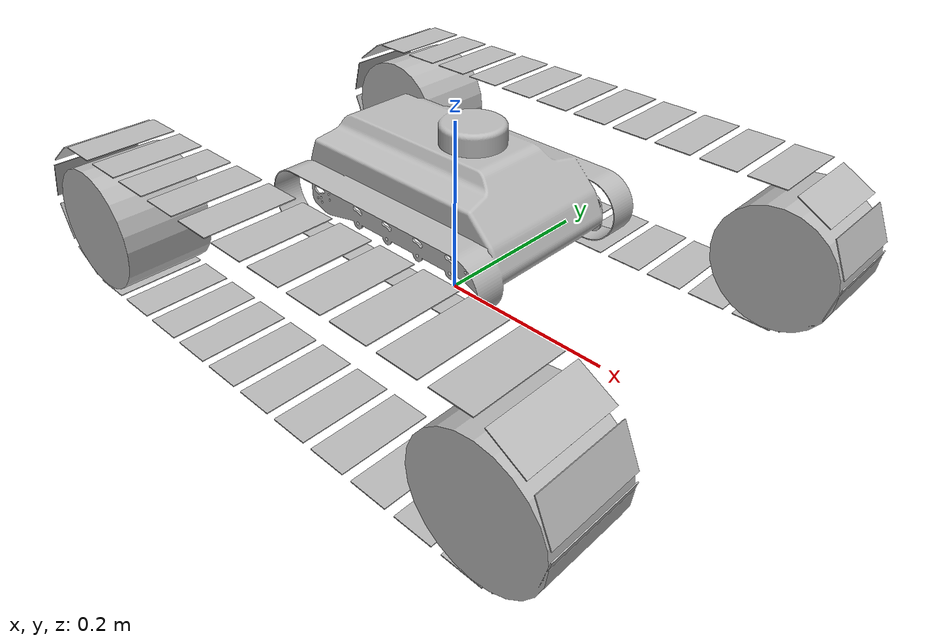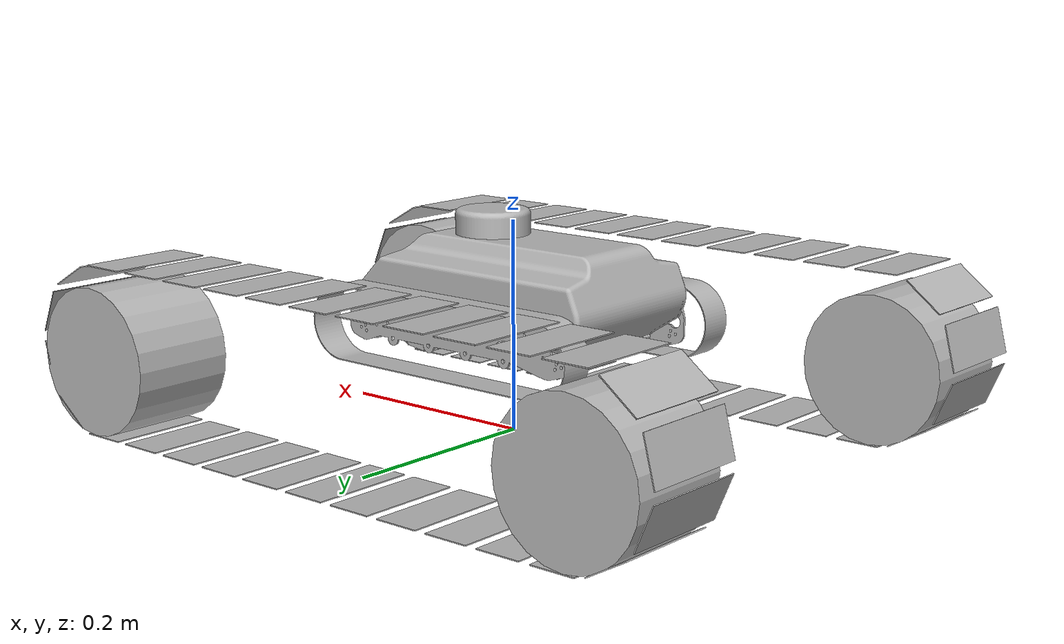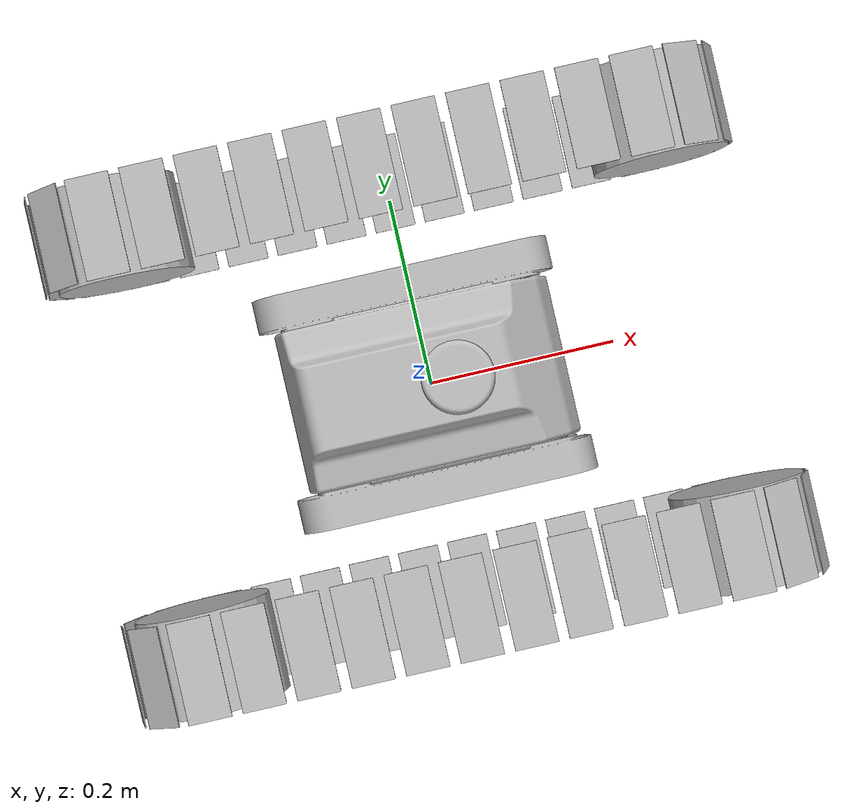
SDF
<?xml version='1.0'?>
<sdf version="1.4">
  <model name="track_creator">
    <link name="base_link">
      <self_collide>0</self_collide>
      <pose>0 0 0.14 0 0 0</pose>
      <collision name="base_link_collision">
        <geometry>
          <box>
            <size>0.56 0.34 0.14</size>
          </box>
        </geometry>
      </collision>
      <visual name="base_link_visual">
        <geometry>
          <mesh><uri>model://tank/tank.stl</uri><scale>0.001 0.001 0.001</scale></mesh>
        </geometry>
      </visual>
    </link>
    <link name="drum1">
      <self_collide>1</self_collide>
      <pose>0.28 0.22 0.071 1.57079632679 0 0</pose>
      <collision name="drum1_collision">
        <geometry>
          <cylinder>
            <radius>0.07</radius>
            <length>0.1</length>
          </cylinder>
        </geometry>
      </collision>
      <visual name="drum1_visual">
        <geometry>
          <cylinder>
            <radius>0.07</radius>
            <length>0.1</length>
          </cylinder>
        </geometry>
      </visual>
    </link>
    <joint type="revolute" name="drum_joint1">
      <pose>0 0 0 0 0 0</pose>
      <parent>base_link</parent>
      <child>drum1</child>
      <axis>
        <xyz>0 1 0</xyz>
      </axis>
    </joint>
    <link name="drum2">
      <self_collide>1</self_collide>
      <pose>0.28 -0.22 0.071 1.57079632679 0 0</pose>
      <collision name="drum2_collision">
        <geometry>
          <cylinder>
            <radius>0.07</radius>
            <length>0.1</length>
          </cylinder>
        </geometry>
      </collision>
      <visual name="drum2_visual">
        <geometry>
          <cylinder>
            <radius>0.07</radius>
            <length>0.1</length>
          </cylinder>
        </geometry>
      </visual>
    </link>
    <joint type="revolute" name="drum_joint2">
      <pose>0 0 0 0 0 0</pose>
      <parent>base_link</parent>
      <child>drum2</child>
      <axis>
        <xyz>0 1 0</xyz>
      </axis>
    </joint>
    <link name="drum3">
      <self_collide>1</self_collide>
      <pose>-0.28 0.22 0.071 1.57079632679 0 0</pose>
      <collision name="drum3_collision">
        <geometry>
          <cylinder>
            <radius>0.07</radius>
            <length>0.1</length>
          </cylinder>
        </geometry>
      </collision>
      <visual name="drum3_visual">
        <geometry>
          <cylinder>
            <radius>0.07</radius>
            <length>0.1</length>
          </cylinder>
        </geometry>
      </visual>
    </link>
    <joint type="revolute" name="drum_joint3">
      <pose>0 0 0 0 0 0</pose>
      <parent>base_link</parent>
      <child>drum3</child>
      <axis>
        <xyz>0 1 0</xyz>
      </axis>
    </joint>
    <link name="drum4">
      <self_collide>1</self_collide>
      <pose>-0.28 -0.22 0.071 1.57079632679 0 0</pose>
      <collision name="drum4_collision">
        <geometry>
          <cylinder>
            <radius>0.07</radius>
            <length>0.1</length>
          </cylinder>
        </geometry>
      </collision>
      <visual name="drum4_visual">
        <geometry>
          <cylinder>
            <radius>0.07</radius>
            <length>0.1</length>
          </cylinder>
        </geometry>
      </visual>
    </link>
    <joint type="revolute" name="drum_joint4">
      <pose>0 0 0 0 0 0</pose>
      <parent>base_link</parent>
      <child>drum4</child>
      <axis>
        <xyz>0 1 0</xyz>
      </axis>
    </joint>
    <link name="right_pad1">
      <self_collide>1</self_collide>
      <pose>0.0539 0.22 0.0005 0 0.0 0</pose>
      <collision name="right_pad1_collision">
        <geometry>
          <box>
            <size>0.0431 0.1 0.001</size>
          </box>
        </geometry>
      </collision>
      <visual name="right_pad1_visual">
        <geometry>
          <box>
            <size>0.0431 0.1 0.001</size>
          </box>
        </geometry>
      </visual>
    </link>
    <joint type="revolute" name="right_pad_joint1">
      <pose>-0.02695 0 0 0 0 0</pose>
      <parent>right_pad1</parent>
      <child>right_pad2</child>
      <axis>
        <xyz>0 1 0</xyz>
      </axis>
    </joint>
    <link name="right_pad2">
      <self_collide>1</self_collide>
      <pose>0.1078 0.22 0.0005 0 0.0 0</pose>
      <collision name="right_pad2_collision">
        <geometry>
          <box>
            <size>0.0431 0.1 0.001</size>
          </box>
        </geometry>
      </collision>
      <visual name="right_pad2_visual">
        <geometry>
          <box>
            <size>0.0431 0.1 0.001</size>
          </box>
        </geometry>
      </visual>
    </link>
    <joint type="revolute" name="right_pad_joint2">
      <pose>-0.02695 0 0 0 0 0</pose>
      <parent>right_pad2</parent>
      <child>right_pad3</child>
      <axis>
        <xyz>0 1 0</xyz>
      </axis>
    </joint>
    <link name="right_pad3">
      <self_collide>1</self_collide>
      <pose>0.1617 0.22 0.0005 0 0.0 0</pose>
      <collision name="right_pad3_collision">
        <geometry>
          <box>
            <size>0.0431 0.1 0.001</size>
          </box>
        </geometry>
      </collision>
      <visual name="right_pad3_visual">
        <geometry>
          <box>
            <size>0.0431 0.1 0.001</size>
          </box>
        </geometry>
      </visual>
    </link>
    <joint type="revolute" name="right_pad_joint3">
      <pose>-0.02695 0 0 0 0 0</pose>
      <parent>right_pad3</parent>
      <child>right_pad4</child>
      <axis>
        <xyz>0 1 0</xyz>
      </axis>
    </joint>
    <link name="right_pad4">
      <self_collide>1</self_collide>
      <pose>0.2156 0.22 0.0005 0 0.0 0</pose>
      <collision name="right_pad4_collision">
        <geometry>
          <box>
            <size>0.0431 0.1 0.001</size>
          </box>
        </geometry>
      </collision>
      <visual name="right_pad4_visual">
        <geometry>
          <box>
            <size>0.0431 0.1 0.001</size>
          </box>
        </geometry>
      </visual>
    </link>
    <joint type="revolute" name="right_pad_joint4">
      <pose>-0.02695 0 0 0 0 0</pose>
      <parent>right_pad4</parent>
      <child>right_pad5</child>
      <axis>
        <xyz>0 1 0</xyz>
      </axis>
    </joint>
    <link name="right_pad5">
      <self_collide>1</self_collide>
      <pose>0.2695 0.22 0.0005 0 0.0 0</pose>
      <collision name="right_pad5_collision">
        <geometry>
          <box>
            <size>0.0431 0.1 0.001</size>
          </box>
        </geometry>
      </collision>
      <visual name="right_pad5_visual">
        <geometry>
          <box>
            <size>0.0431 0.1 0.001</size>
          </box>
        </geometry>
      </visual>
    </link>
    <joint type="revolute" name="right_pad_joint5">
      <pose>-0.02695 0 0 0 0 0</pose>
      <parent>right_pad5</parent>
      <child>right_pad6</child>
      <axis>
        <xyz>0 1 0</xyz>
      </axis>
    </joint>
    <link name="right_pad6">
      <self_collide>1</self_collide>
      <pose>0.317803275993 0.22 0.0169420225146 0 -0.656178717991 0</pose>
      <collision name="right_pad6_collision">
        <geometry>
          <box>
            <size>0.0431 0.1 0.001</size>
          </box>
        </geometry>
      </collision>
      <visual name="right_pad6_visual">
        <geometry>
          <box>
            <size>0.0431 0.1 0.001</size>
          </box>
        </geometry>
      </visual>
    </link>
    <joint type="revolute" name="right_pad_joint6">
      <pose>-0.02695 0 0 0 0 0</pose>
      <parent>right_pad6</parent>
      <child>right_pad7</child>
      <axis>
        <xyz>0 1 0</xyz>
      </axis>
    </joint>
    <link name="right_pad7">
      <self_collide>1</self_collide>
      <pose>0.346044206578 0.22 0.0594390390652 0 -1.31235743598 0</pose>
      <collision name="right_pad7_collision">
        <geometry>
          <box>
            <size>0.0431 0.1 0.001</size>
          </box>
        </geometry>
      </collision>
      <visual name="right_pad7_visual">
        <geometry>
          <box>
            <size>0.0431 0.1 0.001</size>
          </box>
        </geometry>
      </visual>
    </link>
    <joint type="revolute" name="right_pad_joint7">
      <pose>-0.02695 0 0 0 0 0</pose>
      <parent>right_pad7</parent>
      <child>right_pad8</child>
      <axis>
        <xyz>0 1 0</xyz>
      </axis>
    </joint>
    <link name="right_pad8">
      <self_collide>1</self_collide>
      <pose>0.342493166955 0.22 0.110340283584 0 -1.96853615397 0</pose>
      <collision name="right_pad8_collision">
        <geometry>
          <box>
            <size>0.0431 0.1 0.001</size>
          </box>
        </geometry>
      </collision>
      <visual name="right_pad8_visual">
        <geometry>
          <box>
            <size>0.0431 0.1 0.001</size>
          </box>
        </geometry>
      </visual>
    </link>
    <joint type="revolute" name="right_pad_joint8">
      <pose>-0.02695 0 0 0 0 0</pose>
      <parent>right_pad8</parent>
      <child>right_pad9</child>
      <axis>
        <xyz>0 1 0</xyz>
      </axis>
    </joint>
    <link name="right_pad9">
      <self_collide>1</self_collide>
      <pose>0.308625050534 0.22 0.148504367042 0 -2.62471487197 0</pose>
      <collision name="right_pad9_collision">
        <geometry>
          <box>
            <size>0.0431 0.1 0.001</size>
          </box>
        </geometry>
      </collision>
      <visual name="right_pad9_visual">
        <geometry>
          <box>
            <size>0.0431 0.1 0.001</size>
          </box>
        </geometry>
      </visual>
    </link>
    <joint type="revolute" name="right_pad_joint9">
      <pose>-0.02695 0 0 0 0 0</pose>
      <parent>right_pad9</parent>
      <child>right_pad10</child>
      <axis>
        <xyz>0 1 0</xyz>
      </axis>
    </joint>
    <link name="right_pad10">
      <self_collide>1</self_collide>
      <pose>0.258245628329 0.22 0.161822200016 0 3.14159265359 0</pose>
      <collision name="right_pad10_collision">
        <geometry>
          <box>
            <size>0.0431 0.1 0.001</size>
          </box>
        </geometry>
      </collision>
      <visual name="right_pad10_visual">
        <geometry>
          <box>
            <size>0.0431 0.1 0.001</size>
          </box>
        </geometry>
      </visual>
    </link>
    <joint type="revolute" name="right_pad_joint10">
      <pose>-0.02695 0 0 0 0 0</pose>
      <parent>right_pad10</parent>
      <child>right_pad11</child>
      <axis>
        <xyz>0 1 0</xyz>
      </axis>
    </joint>
    <link name="right_pad11">
      <self_collide>1</self_collide>
      <pose>0.204345628329 0.22 0.161822200016 0 3.14159265359 0</pose>
      <collision name="right_pad11_collision">
        <geometry>
          <box>
            <size>0.0431 0.1 0.001</size>
          </box>
        </geometry>
      </collision>
      <visual name="right_pad11_visual">
        <geometry>
          <box>
            <size>0.0431 0.1 0.001</size>
          </box>
        </geometry>
      </visual>
    </link>
    <joint type="revolute" name="right_pad_joint11">
      <pose>-0.02695 0 0 0 0 0</pose>
      <parent>right_pad11</parent>
      <child>right_pad12</child>
      <axis>
        <xyz>0 1 0</xyz>
      </axis>
    </joint>
    <link name="right_pad12">
      <self_collide>1</self_collide>
      <pose>0.150445628329 0.22 0.161822200016 0 3.14159265359 0</pose>
      <collision name="right_pad12_collision">
        <geometry>
          <box>
            <size>0.0431 0.1 0.001</size>
          </box>
        </geometry>
      </collision>
      <visual name="right_pad12_visual">
        <geometry>
          <box>
            <size>0.0431 0.1 0.001</size>
          </box>
        </geometry>
      </visual>
    </link>
    <joint type="revolute" name="right_pad_joint12">
      <pose>-0.02695 0 0 0 0 0</pose>
      <parent>right_pad12</parent>
      <child>right_pad13</child>
      <axis>
        <xyz>0 1 0</xyz>
      </axis>
    </joint>
    <link name="right_pad13">
      <self_collide>1</self_collide>
      <pose>0.0965456283288 0.22 0.161822200016 0 3.14159265359 0</pose>
      <collision name="right_pad13_collision">
        <geometry>
          <box>
            <size>0.0431 0.1 0.001</size>
          </box>
        </geometry>
      </collision>
      <visual name="right_pad13_visual">
        <geometry>
          <box>
            <size>0.0431 0.1 0.001</size>
          </box>
        </geometry>
      </visual>
    </link>
    <joint type="revolute" name="right_pad_joint13">
      <pose>-0.02695 0 0 0 0 0</pose>
      <parent>right_pad13</parent>
      <child>right_pad14</child>
      <axis>
        <xyz>0 1 0</xyz>
      </axis>
    </joint>
    <link name="right_pad14">
      <self_collide>1</self_collide>
      <pose>0.0426456283288 0.22 0.161822200016 0 3.14159265359 0</pose>
      <collision name="right_pad14_collision">
        <geometry>
          <box>
            <size>0.0431 0.1 0.001</size>
          </box>
        </geometry>
      </collision>
      <visual name="right_pad14_visual">
        <geometry>
          <box>
            <size>0.0431 0.1 0.001</size>
          </box>
        </geometry>
      </visual>
    </link>
    <joint type="revolute" name="right_pad_joint14">
      <pose>-0.02695 0 0 0 0 0</pose>
      <parent>right_pad14</parent>
      <child>right_pad15</child>
      <axis>
        <xyz>0 1 0</xyz>
      </axis>
    </joint>
    <link name="right_pad15">
      <self_collide>1</self_collide>
      <pose>-0.0112543716712 0.22 0.161822200016 0 3.14159265359 0</pose>
      <collision name="right_pad15_collision">
        <geometry>
          <box>
            <size>0.0431 0.1 0.001</size>
          </box>
        </geometry>
      </collision>
      <visual name="right_pad15_visual">
        <geometry>
          <box>
            <size>0.0431 0.1 0.001</size>
          </box>
        </geometry>
      </visual>
    </link>
    <joint type="revolute" name="right_pad_joint15">
      <pose>-0.02695 0 0 0 0 0</pose>
      <parent>right_pad15</parent>
      <child>right_pad16</child>
      <axis>
        <xyz>0 1 0</xyz>
      </axis>
    </joint>
    <link name="right_pad16">
      <self_collide>1</self_collide>
      <pose>-0.0651543716712 0.22 0.161822200016 0 3.14159265359 0</pose>
      <collision name="right_pad16_collision">
        <geometry>
          <box>
            <size>0.0431 0.1 0.001</size>
          </box>
        </geometry>
      </collision>
      <visual name="right_pad16_visual">
        <geometry>
          <box>
            <size>0.0431 0.1 0.001</size>
          </box>
        </geometry>
      </visual>
    </link>
    <joint type="revolute" name="right_pad_joint16">
      <pose>-0.02695 0 0 0 0 0</pose>
      <parent>right_pad16</parent>
      <child>right_pad17</child>
      <axis>
        <xyz>0 1 0</xyz>
      </axis>
    </joint>
    <link name="right_pad17">
      <self_collide>1</self_collide>
      <pose>-0.119054371671 0.22 0.161822200016 0 3.14159265359 0</pose>
      <collision name="right_pad17_collision">
        <geometry>
          <box>
            <size>0.0431 0.1 0.001</size>
          </box>
        </geometry>
      </collision>
      <visual name="right_pad17_visual">
        <geometry>
          <box>
            <size>0.0431 0.1 0.001</size>
          </box>
        </geometry>
      </visual>
    </link>
    <joint type="revolute" name="right_pad_joint17">
      <pose>-0.02695 0 0 0 0 0</pose>
      <parent>right_pad17</parent>
      <child>right_pad18</child>
      <axis>
        <xyz>0 1 0</xyz>
      </axis>
    </joint>
    <link name="right_pad18">
      <self_collide>1</self_collide>
      <pose>-0.172954371671 0.22 0.161822200016 0 3.14159265359 0</pose>
      <collision name="right_pad18_collision">
        <geometry>
          <box>
            <size>0.0431 0.1 0.001</size>
          </box>
        </geometry>
      </collision>
      <visual name="right_pad18_visual">
        <geometry>
          <box>
            <size>0.0431 0.1 0.001</size>
          </box>
        </geometry>
      </visual>
    </link>
    <joint type="revolute" name="right_pad_joint18">
      <pose>-0.02695 0 0 0 0 0</pose>
      <parent>right_pad18</parent>
      <child>right_pad19</child>
      <axis>
        <xyz>0 1 0</xyz>
      </axis>
    </joint>
    <link name="right_pad19">
      <self_collide>1</self_collide>
      <pose>-0.226854371671 0.22 0.161822200016 0 3.14159265359 0</pose>
      <collision name="right_pad19_collision">
        <geometry>
          <box>
            <size>0.0431 0.1 0.001</size>
          </box>
        </geometry>
      </collision>
      <visual name="right_pad19_visual">
        <geometry>
          <box>
            <size>0.0431 0.1 0.001</size>
          </box>
        </geometry>
      </visual>
    </link>
    <joint type="revolute" name="right_pad_joint19">
      <pose>-0.02695 0 0 0 0 0</pose>
      <parent>right_pad19</parent>
      <child>right_pad20</child>
      <axis>
        <xyz>0 1 0</xyz>
      </axis>
    </joint>
    <link name="right_pad20">
      <self_collide>1</self_collide>
      <pose>-0.280754371671 0.22 0.161822200016 0 3.14159265359 0</pose>
      <collision name="right_pad20_collision">
        <geometry>
          <box>
            <size>0.0431 0.1 0.001</size>
          </box>
        </geometry>
      </collision>
      <visual name="right_pad20_visual">
        <geometry>
          <box>
            <size>0.0431 0.1 0.001</size>
          </box>
        </geometry>
      </visual>
    </link>
    <joint type="revolute" name="right_pad_joint20">
      <pose>-0.02695 0 0 0 0 0</pose>
      <parent>right_pad20</parent>
      <child>right_pad21</child>
      <axis>
        <xyz>0 1 0</xyz>
      </axis>
    </joint>
    <link name="right_pad21">
      <self_collide>1</self_collide>
      <pose>-0.329057647664 0.22 0.145380177501 0 2.4854139356 0</pose>
      <collision name="right_pad21_collision">
        <geometry>
          <box>
            <size>0.0431 0.1 0.001</size>
          </box>
        </geometry>
      </collision>
      <visual name="right_pad21_visual">
        <geometry>
          <box>
            <size>0.0431 0.1 0.001</size>
          </box>
        </geometry>
      </visual>
    </link>
    <joint type="revolute" name="right_pad_joint21">
      <pose>-0.02695 0 0 0 0 0</pose>
      <parent>right_pad21</parent>
      <child>right_pad22</child>
      <axis>
        <xyz>0 1 0</xyz>
      </axis>
    </joint>
    <link name="right_pad22">
      <self_collide>1</self_collide>
      <pose>-0.357298578249 0.22 0.10288316095 0 1.82923521761 0</pose>
      <collision name="right_pad22_collision">
        <geometry>
          <box>
            <size>0.0431 0.1 0.001</size>
          </box>
        </geometry>
      </collision>
      <visual name="right_pad22_visual">
        <geometry>
          <box>
            <size>0.0431 0.1 0.001</size>
          </box>
        </geometry>
      </visual>
    </link>
    <joint type="revolute" name="right_pad_joint22">
      <pose>-0.02695 0 0 0 0 0</pose>
      <parent>right_pad22</parent>
      <child>right_pad23</child>
      <axis>
        <xyz>0 1 0</xyz>
      </axis>
    </joint>
    <link name="right_pad23">
      <self_collide>1</self_collide>
      <pose>-0.353747538626 0.22 0.0519819164311 0 1.17305649962 0</pose>
      <collision name="right_pad23_collision">
        <geometry>
          <box>
            <size>0.0431 0.1 0.001</size>
          </box>
        </geometry>
      </collision>
      <visual name="right_pad23_visual">
        <geometry>
          <box>
            <size>0.0431 0.1 0.001</size>
          </box>
        </geometry>
      </visual>
    </link>
    <joint type="revolute" name="right_pad_joint23">
      <pose>-0.02695 0 0 0 0 0</pose>
      <parent>right_pad23</parent>
      <child>right_pad24</child>
      <axis>
        <xyz>0 1 0</xyz>
      </axis>
    </joint>
    <link name="right_pad24">
      <self_collide>1</self_collide>
      <pose>-0.319879422205 0.22 0.0138178329739 0 0.516877781624 0</pose>
      <collision name="right_pad24_collision">
        <geometry>
          <box>
            <size>0.0431 0.1 0.001</size>
          </box>
        </geometry>
      </collision>
      <visual name="right_pad24_visual">
        <geometry>
          <box>
            <size>0.0431 0.1 0.001</size>
          </box>
        </geometry>
      </visual>
    </link>
    <joint type="revolute" name="right_pad_joint24">
      <pose>-0.02695 0 0 0 0 0</pose>
      <parent>right_pad24</parent>
      <child>right_pad25</child>
      <axis>
        <xyz>0 1 0</xyz>
      </axis>
    </joint>
    <link name="right_pad25">
      <self_collide>1</self_collide>
      <pose>-0.2695 0.22 0.000499999999999 0 -1.66533453694e-15 0</pose>
      <collision name="right_pad25_collision">
        <geometry>
          <box>
            <size>0.0431 0.1 0.001</size>
          </box>
        </geometry>
      </collision>
      <visual name="right_pad25_visual">
        <geometry>
          <box>
            <size>0.0431 0.1 0.001</size>
          </box>
        </geometry>
      </visual>
    </link>
    <joint type="revolute" name="right_pad_joint25">
      <pose>-0.02695 0 0 0 0 0</pose>
      <parent>right_pad25</parent>
      <child>right_pad26</child>
      <axis>
        <xyz>0 1 0</xyz>
      </axis>
    </joint>
    <link name="right_pad26">
      <self_collide>1</self_collide>
      <pose>-0.2156 0.22 0.0005 0 -2.1551932566e-15 0</pose>
      <collision name="right_pad26_collision">
        <geometry>
          <box>
            <size>0.0431 0.1 0.001</size>
          </box>
        </geometry>
      </collision>
      <visual name="right_pad26_visual">
        <geometry>
          <box>
            <size>0.0431 0.1 0.001</size>
          </box>
        </geometry>
      </visual>
    </link>
    <joint type="revolute" name="right_pad_joint26">
      <pose>-0.02695 0 0 0 0 0</pose>
      <parent>right_pad26</parent>
      <child>right_pad27</child>
      <axis>
        <xyz>0 1 0</xyz>
      </axis>
    </joint>
    <link name="right_pad27">
      <self_collide>1</self_collide>
      <pose>-0.1617 0.22 0.0005 0 -2.1551932566e-15 0</pose>
      <collision name="right_pad27_collision">
        <geometry>
          <box>
            <size>0.0431 0.1 0.001</size>
          </box>
        </geometry>
      </collision>
      <visual name="right_pad27_visual">
        <geometry>
          <box>
            <size>0.0431 0.1 0.001</size>
          </box>
        </geometry>
      </visual>
    </link>
    <joint type="revolute" name="right_pad_joint27">
      <pose>-0.02695 0 0 0 0 0</pose>
      <parent>right_pad27</parent>
      <child>right_pad28</child>
      <axis>
        <xyz>0 1 0</xyz>
      </axis>
    </joint>
    <link name="right_pad28">
      <self_collide>1</self_collide>
      <pose>-0.1078 0.22 0.0005 0 -2.1551932566e-15 0</pose>
      <collision name="right_pad28_collision">
        <geometry>
          <box>
            <size>0.0431 0.1 0.001</size>
          </box>
        </geometry>
      </collision>
      <visual name="right_pad28_visual">
        <geometry>
          <box>
            <size>0.0431 0.1 0.001</size>
          </box>
        </geometry>
      </visual>
    </link>
    <joint type="revolute" name="right_pad_joint28">
      <pose>-0.02695 0 0 0 0 0</pose>
      <parent>right_pad28</parent>
      <child>right_pad29</child>
      <axis>
        <xyz>0 1 0</xyz>
      </axis>
    </joint>
    <link name="right_pad29">
      <self_collide>1</self_collide>
      <pose>-0.0539 0.22 0.0005 0 -2.1551932566e-15 0</pose>
      <collision name="right_pad29_collision">
        <geometry>
          <box>
            <size>0.0431 0.1 0.001</size>
          </box>
        </geometry>
      </collision>
      <visual name="right_pad29_visual">
        <geometry>
          <box>
            <size>0.0431 0.1 0.001</size>
          </box>
        </geometry>
      </visual>
    </link>
    <joint type="revolute" name="right_pad_joint29">
      <pose>-0.02695 0 0 0 0 0</pose>
      <parent>right_pad29</parent>
      <child>right_pad30</child>
      <axis>
        <xyz>0 1 0</xyz>
      </axis>
    </joint>
    <link name="right_pad30">
      <self_collide>1</self_collide>
      <pose>2.77555756156e-16 0.22 0.0005 0 -2.1551932566e-15 0</pose>
      <collision name="right_pad30_collision">
        <geometry>
          <box>
            <size>0.0431 0.1 0.001</size>
          </box>
        </geometry>
      </collision>
      <visual name="right_pad30_visual">
        <geometry>
          <box>
            <size>0.0431 0.1 0.001</size>
          </box>
        </geometry>
      </visual>
    </link>
    <joint type="revolute" name="right_pad_joint30">
      <pose>-0.02695 0 0 0 0 0</pose>
      <parent>right_pad30</parent>
      <child>right_pad31</child>
      <axis>
        <xyz>0 1 0</xyz>
      </axis>
    </joint>
    <link name="right_pad31">
      <self_collide>1</self_collide>
      <pose>0.0539 0.22 0.0005 0 -2.1551932566e-15 0</pose>
      <collision name="right_pad31_collision">
        <geometry>
          <box>
            <size>0.0431 0.1 0.001</size>
          </box>
        </geometry>
      </collision>
      <visual name="right_pad31_visual">
        <geometry>
          <box>
            <size>0.0431 0.1 0.001</size>
          </box>
        </geometry>
      </visual>
    </link>
    <joint type="revolute" name="right_pad_joint31">
      <pose>-0.02695 0 0 0 0 0</pose>
      <parent>right_pad31</parent>
      <child>right_pad1</child>
      <axis>
        <xyz>0 1 0</xyz>
      </axis>
    </joint>
    <link name="left_pad1">
      <self_collide>1</self_collide>
      <pose>0.0539 -0.22 0.0005 0 0.0 0</pose>
      <collision name="left_pad1_collision">
        <geometry>
          <box>
            <size>0.0431 0.1 0.001</size>
          </box>
        </geometry>
      </collision>
      <visual name="left_pad1_visual">
        <geometry>
          <box>
            <size>0.0431 0.1 0.001</size>
          </box>
        </geometry>
      </visual>
    </link>
    <joint type="revolute" name="left_pad_joint1">
      <pose>-0.02695 0 0 0 0 0</pose>
      <parent>left_pad1</parent>
      <child>left_pad2</child>
      <axis>
        <xyz>0 1 0</xyz>
      </axis>
    </joint>
    <link name="left_pad2">
      <self_collide>1</self_collide>
      <pose>0.1078 -0.22 0.0005 0 0.0 0</pose>
      <collision name="left_pad2_collision">
        <geometry>
          <box>
            <size>0.0431 0.1 0.001</size>
          </box>
        </geometry>
      </collision>
      <visual name="left_pad2_visual">
        <geometry>
          <box>
            <size>0.0431 0.1 0.001</size>
          </box>
        </geometry>
      </visual>
    </link>
    <joint type="revolute" name="left_pad_joint2">
      <pose>-0.02695 0 0 0 0 0</pose>
      <parent>left_pad2</parent>
      <child>left_pad3</child>
      <axis>
        <xyz>0 1 0</xyz>
      </axis>
    </joint>
    <link name="left_pad3">
      <self_collide>1</self_collide>
      <pose>0.1617 -0.22 0.0005 0 0.0 0</pose>
      <collision name="left_pad3_collision">
        <geometry>
          <box>
            <size>0.0431 0.1 0.001</size>
          </box>
        </geometry>
      </collision>
      <visual name="left_pad3_visual">
        <geometry>
          <box>
            <size>0.0431 0.1 0.001</size>
          </box>
        </geometry>
      </visual>
    </link>
    <joint type="revolute" name="left_pad_joint3">
      <pose>-0.02695 0 0 0 0 0</pose>
      <parent>left_pad3</parent>
      <child>left_pad4</child>
      <axis>
        <xyz>0 1 0</xyz>
      </axis>
    </joint>
    <link name="left_pad4">
      <self_collide>1</self_collide>
      <pose>0.2156 -0.22 0.0005 0 0.0 0</pose>
      <collision name="left_pad4_collision">
        <geometry>
          <box>
            <size>0.0431 0.1 0.001</size>
          </box>
        </geometry>
      </collision>
      <visual name="left_pad4_visual">
        <geometry>
          <box>
            <size>0.0431 0.1 0.001</size>
          </box>
        </geometry>
      </visual>
    </link>
    <joint type="revolute" name="left_pad_joint4">
      <pose>-0.02695 0 0 0 0 0</pose>
      <parent>left_pad4</parent>
      <child>left_pad5</child>
      <axis>
        <xyz>0 1 0</xyz>
      </axis>
    </joint>
    <link name="left_pad5">
      <self_collide>1</self_collide>
      <pose>0.2695 -0.22 0.0005 0 0.0 0</pose>
      <collision name="left_pad5_collision">
        <geometry>
          <box>
            <size>0.0431 0.1 0.001</size>
          </box>
        </geometry>
      </collision>
      <visual name="left_pad5_visual">
        <geometry>
          <box>
            <size>0.0431 0.1 0.001</size>
          </box>
        </geometry>
      </visual>
    </link>
    <joint type="revolute" name="left_pad_joint5">
      <pose>-0.02695 0 0 0 0 0</pose>
      <parent>left_pad5</parent>
      <child>left_pad6</child>
      <axis>
        <xyz>0 1 0</xyz>
      </axis>
    </joint>
    <link name="left_pad6">
      <self_collide>1</self_collide>
      <pose>0.317803275993 -0.22 0.0169420225146 0 -0.656178717991 0</pose>
      <collision name="left_pad6_collision">
        <geometry>
          <box>
            <size>0.0431 0.1 0.001</size>
          </box>
        </geometry>
      </collision>
      <visual name="left_pad6_visual">
        <geometry>
          <box>
            <size>0.0431 0.1 0.001</size>
          </box>
        </geometry>
      </visual>
    </link>
    <joint type="revolute" name="left_pad_joint6">
      <pose>-0.02695 0 0 0 0 0</pose>
      <parent>left_pad6</parent>
      <child>left_pad7</child>
      <axis>
        <xyz>0 1 0</xyz>
      </axis>
    </joint>
    <link name="left_pad7">
      <self_collide>1</self_collide>
      <pose>0.346044206578 -0.22 0.0594390390652 0 -1.31235743598 0</pose>
      <collision name="left_pad7_collision">
        <geometry>
          <box>
            <size>0.0431 0.1 0.001</size>
          </box>
        </geometry>
      </collision>
      <visual name="left_pad7_visual">
        <geometry>
          <box>
            <size>0.0431 0.1 0.001</size>
          </box>
        </geometry>
      </visual>
    </link>
    <joint type="revolute" name="left_pad_joint7">
      <pose>-0.02695 0 0 0 0 0</pose>
      <parent>left_pad7</parent>
      <child>left_pad8</child>
      <axis>
        <xyz>0 1 0</xyz>
      </axis>
    </joint>
    <link name="left_pad8">
      <self_collide>1</self_collide>
      <pose>0.342493166955 -0.22 0.110340283584 0 -1.96853615397 0</pose>
      <collision name="left_pad8_collision">
        <geometry>
          <box>
            <size>0.0431 0.1 0.001</size>
          </box>
        </geometry>
      </collision>
      <visual name="left_pad8_visual">
        <geometry>
          <box>
            <size>0.0431 0.1 0.001</size>
          </box>
        </geometry>
      </visual>
    </link>
    <joint type="revolute" name="left_pad_joint8">
      <pose>-0.02695 0 0 0 0 0</pose>
      <parent>left_pad8</parent>
      <child>left_pad9</child>
      <axis>
        <xyz>0 1 0</xyz>
      </axis>
    </joint>
    <link name="left_pad9">
      <self_collide>1</self_collide>
      <pose>0.308625050534 -0.22 0.148504367042 0 -2.62471487197 0</pose>
      <collision name="left_pad9_collision">
        <geometry>
          <box>
            <size>0.0431 0.1 0.001</size>
          </box>
        </geometry>
      </collision>
      <visual name="left_pad9_visual">
        <geometry>
          <box>
            <size>0.0431 0.1 0.001</size>
          </box>
        </geometry>
      </visual>
    </link>
    <joint type="revolute" name="left_pad_joint9">
      <pose>-0.02695 0 0 0 0 0</pose>
      <parent>left_pad9</parent>
      <child>left_pad10</child>
      <axis>
        <xyz>0 1 0</xyz>
      </axis>
    </joint>
    <link name="left_pad10">
      <self_collide>1</self_collide>
      <pose>0.258245628329 -0.22 0.161822200016 0 3.14159265359 0</pose>
      <collision name="left_pad10_collision">
        <geometry>
          <box>
            <size>0.0431 0.1 0.001</size>
          </box>
        </geometry>
      </collision>
      <visual name="left_pad10_visual">
        <geometry>
          <box>
            <size>0.0431 0.1 0.001</size>
          </box>
        </geometry>
      </visual>
    </link>
    <joint type="revolute" name="left_pad_joint10">
      <pose>-0.02695 0 0 0 0 0</pose>
      <parent>left_pad10</parent>
      <child>left_pad11</child>
      <axis>
        <xyz>0 1 0</xyz>
      </axis>
    </joint>
    <link name="left_pad11">
      <self_collide>1</self_collide>
      <pose>0.204345628329 -0.22 0.161822200016 0 3.14159265359 0</pose>
      <collision name="left_pad11_collision">
        <geometry>
          <box>
            <size>0.0431 0.1 0.001</size>
          </box>
        </geometry>
      </collision>
      <visual name="left_pad11_visual">
        <geometry>
          <box>
            <size>0.0431 0.1 0.001</size>
          </box>
        </geometry>
      </visual>
    </link>
    <joint type="revolute" name="left_pad_joint11">
      <pose>-0.02695 0 0 0 0 0</pose>
      <parent>left_pad11</parent>
      <child>left_pad12</child>
      <axis>
        <xyz>0 1 0</xyz>
      </axis>
    </joint>
    <link name="left_pad12">
      <self_collide>1</self_collide>
      <pose>0.150445628329 -0.22 0.161822200016 0 3.14159265359 0</pose>
      <collision name="left_pad12_collision">
        <geometry>
          <box>
            <size>0.0431 0.1 0.001</size>
          </box>
        </geometry>
      </collision>
      <visual name="left_pad12_visual">
        <geometry>
          <box>
            <size>0.0431 0.1 0.001</size>
          </box>
        </geometry>
      </visual>
    </link>
    <joint type="revolute" name="left_pad_joint12">
      <pose>-0.02695 0 0 0 0 0</pose>
      <parent>left_pad12</parent>
      <child>left_pad13</child>
      <axis>
        <xyz>0 1 0</xyz>
      </axis>
    </joint>
    <link name="left_pad13">
      <self_collide>1</self_collide>
      <pose>0.0965456283288 -0.22 0.161822200016 0 3.14159265359 0</pose>
      <collision name="left_pad13_collision">
        <geometry>
          <box>
            <size>0.0431 0.1 0.001</size>
          </box>
        </geometry>
      </collision>
      <visual name="left_pad13_visual">
        <geometry>
          <box>
            <size>0.0431 0.1 0.001</size>
          </box>
        </geometry>
      </visual>
    </link>
    <joint type="revolute" name="left_pad_joint13">
      <pose>-0.02695 0 0 0 0 0</pose>
      <parent>left_pad13</parent>
      <child>left_pad14</child>
      <axis>
        <xyz>0 1 0</xyz>
      </axis>
    </joint>
    <link name="left_pad14">
      <self_collide>1</self_collide>
      <pose>0.0426456283288 -0.22 0.161822200016 0 3.14159265359 0</pose>
      <collision name="left_pad14_collision">
        <geometry>
          <box>
            <size>0.0431 0.1 0.001</size>
          </box>
        </geometry>
      </collision>
      <visual name="left_pad14_visual">
        <geometry>
          <box>
            <size>0.0431 0.1 0.001</size>
          </box>
        </geometry>
      </visual>
    </link>
    <joint type="revolute" name="left_pad_joint14">
      <pose>-0.02695 0 0 0 0 0</pose>
      <parent>left_pad14</parent>
      <child>left_pad15</child>
      <axis>
        <xyz>0 1 0</xyz>
      </axis>
    </joint>
    <link name="left_pad15">
      <self_collide>1</self_collide>
      <pose>-0.0112543716712 -0.22 0.161822200016 0 3.14159265359 0</pose>
      <collision name="left_pad15_collision">
        <geometry>
          <box>
            <size>0.0431 0.1 0.001</size>
          </box>
        </geometry>
      </collision>
      <visual name="left_pad15_visual">
        <geometry>
          <box>
            <size>0.0431 0.1 0.001</size>
          </box>
        </geometry>
      </visual>
    </link>
    <joint type="revolute" name="left_pad_joint15">
      <pose>-0.02695 0 0 0 0 0</pose>
      <parent>left_pad15</parent>
      <child>left_pad16</child>
      <axis>
        <xyz>0 1 0</xyz>
      </axis>
    </joint>
    <link name="left_pad16">
      <self_collide>1</self_collide>
      <pose>-0.0651543716712 -0.22 0.161822200016 0 3.14159265359 0</pose>
      <collision name="left_pad16_collision">
        <geometry>
          <box>
            <size>0.0431 0.1 0.001</size>
          </box>
        </geometry>
      </collision>
      <visual name="left_pad16_visual">
        <geometry>
          <box>
            <size>0.0431 0.1 0.001</size>
          </box>
        </geometry>
      </visual>
    </link>
    <joint type="revolute" name="left_pad_joint16">
      <pose>-0.02695 0 0 0 0 0</pose>
      <parent>left_pad16</parent>
      <child>left_pad17</child>
      <axis>
        <xyz>0 1 0</xyz>
      </axis>
    </joint>
    <link name="left_pad17">
      <self_collide>1</self_collide>
      <pose>-0.119054371671 -0.22 0.161822200016 0 3.14159265359 0</pose>
      <collision name="left_pad17_collision">
        <geometry>
          <box>
            <size>0.0431 0.1 0.001</size>
          </box>
        </geometry>
      </collision>
      <visual name="left_pad17_visual">
        <geometry>
          <box>
            <size>0.0431 0.1 0.001</size>
          </box>
        </geometry>
      </visual>
    </link>
    <joint type="revolute" name="left_pad_joint17">
      <pose>-0.02695 0 0 0 0 0</pose>
      <parent>left_pad17</parent>
      <child>left_pad18</child>
      <axis>
        <xyz>0 1 0</xyz>
      </axis>
    </joint>
    <link name="left_pad18">
      <self_collide>1</self_collide>
      <pose>-0.172954371671 -0.22 0.161822200016 0 3.14159265359 0</pose>
      <collision name="left_pad18_collision">
        <geometry>
          <box>
            <size>0.0431 0.1 0.001</size>
          </box>
        </geometry>
      </collision>
      <visual name="left_pad18_visual">
        <geometry>
          <box>
            <size>0.0431 0.1 0.001</size>
          </box>
        </geometry>
      </visual>
    </link>
    <joint type="revolute" name="left_pad_joint18">
      <pose>-0.02695 0 0 0 0 0</pose>
      <parent>left_pad18</parent>
      <child>left_pad19</child>
      <axis>
        <xyz>0 1 0</xyz>
      </axis>
    </joint>
    <link name="left_pad19">
      <self_collide>1</self_collide>
      <pose>-0.226854371671 -0.22 0.161822200016 0 3.14159265359 0</pose>
      <collision name="left_pad19_collision">
        <geometry>
          <box>
            <size>0.0431 0.1 0.001</size>
          </box>
        </geometry>
      </collision>
      <visual name="left_pad19_visual">
        <geometry>
          <box>
            <size>0.0431 0.1 0.001</size>
          </box>
        </geometry>
      </visual>
    </link>
    <joint type="revolute" name="left_pad_joint19">
      <pose>-0.02695 0 0 0 0 0</pose>
      <parent>left_pad19</parent>
      <child>left_pad20</child>
      <axis>
        <xyz>0 1 0</xyz>
      </axis>
    </joint>
    <link name="left_pad20">
      <self_collide>1</self_collide>
      <pose>-0.280754371671 -0.22 0.161822200016 0 3.14159265359 0</pose>
      <collision name="left_pad20_collision">
        <geometry>
          <box>
            <size>0.0431 0.1 0.001</size>
          </box>
        </geometry>
      </collision>
      <visual name="left_pad20_visual">
        <geometry>
          <box>
            <size>0.0431 0.1 0.001</size>
          </box>
        </geometry>
      </visual>
    </link>
    <joint type="revolute" name="left_pad_joint20">
      <pose>-0.02695 0 0 0 0 0</pose>
      <parent>left_pad20</parent>
      <child>left_pad21</child>
      <axis>
        <xyz>0 1 0</xyz>
      </axis>
    </joint>
    <link name="left_pad21">
      <self_collide>1</self_collide>
      <pose>-0.329057647664 -0.22 0.145380177501 0 2.4854139356 0</pose>
      <collision name="left_pad21_collision">
        <geometry>
          <box>
            <size>0.0431 0.1 0.001</size>
          </box>
        </geometry>
      </collision>
      <visual name="left_pad21_visual">
        <geometry>
          <box>
            <size>0.0431 0.1 0.001</size>
          </box>
        </geometry>
      </visual>
    </link>
    <joint type="revolute" name="left_pad_joint21">
      <pose>-0.02695 0 0 0 0 0</pose>
      <parent>left_pad21</parent>
      <child>left_pad22</child>
      <axis>
        <xyz>0 1 0</xyz>
      </axis>
    </joint>
    <link name="left_pad22">
      <self_collide>1</self_collide>
      <pose>-0.357298578249 -0.22 0.10288316095 0 1.82923521761 0</pose>
      <collision name="left_pad22_collision">
        <geometry>
          <box>
            <size>0.0431 0.1 0.001</size>
          </box>
        </geometry>
      </collision>
      <visual name="left_pad22_visual">
        <geometry>
          <box>
            <size>0.0431 0.1 0.001</size>
          </box>
        </geometry>
      </visual>
    </link>
    <joint type="revolute" name="left_pad_joint22">
      <pose>-0.02695 0 0 0 0 0</pose>
      <parent>left_pad22</parent>
      <child>left_pad23</child>
      <axis>
        <xyz>0 1 0</xyz>
      </axis>
    </joint>
    <link name="left_pad23">
      <self_collide>1</self_collide>
      <pose>-0.353747538626 -0.22 0.0519819164311 0 1.17305649962 0</pose>
      <collision name="left_pad23_collision">
        <geometry>
          <box>
            <size>0.0431 0.1 0.001</size>
          </box>
        </geometry>
      </collision>
      <visual name="left_pad23_visual">
        <geometry>
          <box>
            <size>0.0431 0.1 0.001</size>
          </box>
        </geometry>
      </visual>
    </link>
    <joint type="revolute" name="left_pad_joint23">
      <pose>-0.02695 0 0 0 0 0</pose>
      <parent>left_pad23</parent>
      <child>left_pad24</child>
      <axis>
        <xyz>0 1 0</xyz>
      </axis>
    </joint>
    <link name="left_pad24">
      <self_collide>1</self_collide>
      <pose>-0.319879422205 -0.22 0.0138178329739 0 0.516877781624 0</pose>
      <collision name="left_pad24_collision">
        <geometry>
          <box>
            <size>0.0431 0.1 0.001</size>
          </box>
        </geometry>
      </collision>
      <visual name="left_pad24_visual">
        <geometry>
          <box>
            <size>0.0431 0.1 0.001</size>
          </box>
        </geometry>
      </visual>
    </link>
    <joint type="revolute" name="left_pad_joint24">
      <pose>-0.02695 0 0 0 0 0</pose>
      <parent>left_pad24</parent>
      <child>left_pad25</child>
      <axis>
        <xyz>0 1 0</xyz>
      </axis>
    </joint>
    <link name="left_pad25">
      <self_collide>1</self_collide>
      <pose>-0.2695 -0.22 0.000499999999999 0 -1.66533453694e-15 0</pose>
      <collision name="left_pad25_collision">
        <geometry>
          <box>
            <size>0.0431 0.1 0.001</size>
          </box>
        </geometry>
      </collision>
      <visual name="left_pad25_visual">
        <geometry>
          <box>
            <size>0.0431 0.1 0.001</size>
          </box>
        </geometry>
      </visual>
    </link>
    <joint type="revolute" name="left_pad_joint25">
      <pose>-0.02695 0 0 0 0 0</pose>
      <parent>left_pad25</parent>
      <child>left_pad26</child>
      <axis>
        <xyz>0 1 0</xyz>
      </axis>
    </joint>
    <link name="left_pad26">
      <self_collide>1</self_collide>
      <pose>-0.2156 -0.22 0.0005 0 -2.1551932566e-15 0</pose>
      <collision name="left_pad26_collision">
        <geometry>
          <box>
            <size>0.0431 0.1 0.001</size>
          </box>
        </geometry>
      </collision>
      <visual name="left_pad26_visual">
        <geometry>
          <box>
            <size>0.0431 0.1 0.001</size>
          </box>
        </geometry>
      </visual>
    </link>
    <joint type="revolute" name="left_pad_joint26">
      <pose>-0.02695 0 0 0 0 0</pose>
      <parent>left_pad26</parent>
      <child>left_pad27</child>
      <axis>
        <xyz>0 1 0</xyz>
      </axis>
    </joint>
    <link name="left_pad27">
      <self_collide>1</self_collide>
      <pose>-0.1617 -0.22 0.0005 0 -2.1551932566e-15 0</pose>
      <collision name="left_pad27_collision">
        <geometry>
          <box>
            <size>0.0431 0.1 0.001</size>
          </box>
        </geometry>
      </collision>
      <visual name="left_pad27_visual">
        <geometry>
          <box>
            <size>0.0431 0.1 0.001</size>
          </box>
        </geometry>
      </visual>
    </link>
    <joint type="revolute" name="left_pad_joint27">
      <pose>-0.02695 0 0 0 0 0</pose>
      <parent>left_pad27</parent>
      <child>left_pad28</child>
      <axis>
        <xyz>0 1 0</xyz>
      </axis>
    </joint>
    <link name="left_pad28">
      <self_collide>1</self_collide>
      <pose>-0.1078 -0.22 0.0005 0 -2.1551932566e-15 0</pose>
      <collision name="left_pad28_collision">
        <geometry>
          <box>
            <size>0.0431 0.1 0.001</size>
          </box>
        </geometry>
      </collision>
      <visual name="left_pad28_visual">
        <geometry>
          <box>
            <size>0.0431 0.1 0.001</size>
          </box>
        </geometry>
      </visual>
    </link>
    <joint type="revolute" name="left_pad_joint28">
      <pose>-0.02695 0 0 0 0 0</pose>
      <parent>left_pad28</parent>
      <child>left_pad29</child>
      <axis>
        <xyz>0 1 0</xyz>
      </axis>
    </joint>
    <link name="left_pad29">
      <self_collide>1</self_collide>
      <pose>-0.0539 -0.22 0.0005 0 -2.1551932566e-15 0</pose>
      <collision name="left_pad29_collision">
        <geometry>
          <box>
            <size>0.0431 0.1 0.001</size>
          </box>
        </geometry>
      </collision>
      <visual name="left_pad29_visual">
        <geometry>
          <box>
            <size>0.0431 0.1 0.001</size>
          </box>
        </geometry>
      </visual>
    </link>
    <joint type="revolute" name="left_pad_joint29">
      <pose>-0.02695 0 0 0 0 0</pose>
      <parent>left_pad29</parent>
      <child>left_pad30</child>
      <axis>
        <xyz>0 1 0</xyz>
      </axis>
    </joint>
    <link name="left_pad30">
      <self_collide>1</self_collide>
      <pose>2.77555756156e-16 -0.22 0.0005 0 -2.1551932566e-15 0</pose>
      <collision name="left_pad30_collision">
        <geometry>
          <box>
            <size>0.0431 0.1 0.001</size>
          </box>
        </geometry>
      </collision>
      <visual name="left_pad30_visual">
        <geometry>
          <box>
            <size>0.0431 0.1 0.001</size>
          </box>
        </geometry>
      </visual>
    </link>
    <joint type="revolute" name="left_pad_joint30">
      <pose>-0.02695 0 0 0 0 0</pose>
      <parent>left_pad30</parent>
      <child>left_pad31</child>
      <axis>
        <xyz>0 1 0</xyz>
      </axis>
    </joint>
    <link name="left_pad31">
      <self_collide>1</self_collide>
      <pose>0.0539 -0.22 0.0005 0 -2.1551932566e-15 0</pose>
      <collision name="left_pad31_collision">
        <geometry>
          <box>
            <size>0.0431 0.1 0.001</size>
          </box>
        </geometry>
      </collision>
      <visual name="left_pad31_visual">
        <geometry>
          <box>
            <size>0.0431 0.1 0.001</size>
          </box>
        </geometry>
      </visual>
    </link>
    <joint type="revolute" name="left_pad_joint31">
      <pose>-0.02695 0 0 0 0 0</pose>
      <parent>left_pad31</parent>
      <child>left_pad1</child>
      <axis>
        <xyz>0 1 0</xyz>
      </axis>
    </joint>
  </model>
</sdf>
